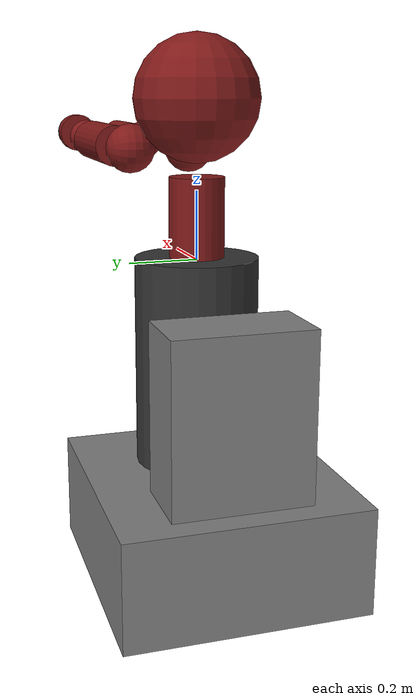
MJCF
<mujoco model="sawyer">
    <compiler angle="radian" meshdir="meshes/" />
    <size njmax="500" nconmax="100" />
    <worldbody>
        <body name="base" pos="0 0 0">
            <inertial pos="0 0 0" mass="0" diaginertia="0 0 0" />
            <body name="controller_box" pos="0 0 0">
                <inertial pos="-0.325 0 -0.38" mass="46.64" diaginertia="1.71363 1.27988 0.809981" />
                <geom size="0.11 0.2 0.265" pos="-0.325 0 -0.38" type="box" />
            </body>
            <body name="pedestal_feet" pos="0 0 0">
                <inertial pos="-0.1225 0 -0.758" mass="167.09" diaginertia="8.16095 9.59375 15.0785" />
                <geom size="0.385 0.35 0.155" pos="-0.1225 0 -0.758" type="box" />
            </body>
            <body name="torso" pos="0 0 0">
                <inertial pos="0 0 0" mass="0.0001" diaginertia="1e-08 1e-08 1e-08" />
            </body>
            <body name="pedestal" pos="0 0 0">
                <inertial pos="0 0 0" quat="0.659267 -0.259505 -0.260945 0.655692" mass="60.864" diaginertia="6.0869 5.81635 4.20915" />
                <geom size="0.18 0.31" pos="0 0 -0.3" type="cylinder" rgba="0.2 0.2 0.2 1" />
            </body>
            <body name="right_arm_base_link" pos="0 0 0">
                <inertial pos="-0.0006241 -2.8025e-05 0.065404" quat="-0.209285 0.674441 0.227335 0.670558" mass="2.0687" diaginertia="0.00740351 0.00681776 0.00672942" />
                <geom size="0.08 0.12" pos="0 0 0.12" type="cylinder" rgba="0.5 0.1 0.1 1" />
                <body name="right_l0" pos="0 0 0.08">
                    <inertial pos="0.024366 0.010969 0.14363" quat="0.894823 0.00899958 -0.170275 0.412573" mass="5.3213" diaginertia="0.0651588 0.0510944 0.0186218" />
                    <joint name="right_j0" pos="0 0 0" axis="0 0 1" limited="true" range="-3.0503 3.0503" />
                    <geom size="0.07" pos="0.081 0 0.237" rgba="0.5 0.1 0.1 1" />
                    <body name="head" pos="0 0 0.2965">
                        <inertial pos="0.0053207 -2.6549e-05 0.1021" quat="0.999993 7.08405e-05 -0.00359857 -0.000626247" mass="1.5795" diaginertia="0.0118334 0.00827089 0.00496574" />
                        <joint name="head_pan" pos="0 0 0" axis="0 0 1" limited="true" range="-5.1477 0.9559" />
                        <geom size="0.18" pos="0 0 0.08" rgba="0.5 0.1 0.1 1" />
                        <body name="screen" pos="0.03 0 0.105" quat="0.5 0.5 0.5 0.5">
                            <inertial pos="0 0 0" mass="0.0001" diaginertia="1e-08 1e-08 1e-08" />
                            <geom size="0.001" rgba="0.2 0.2 0.2 1" />
                        </body>
                        <body name="head_camera" pos="0.0228027 0 0.216572" quat="0.342813 -0.618449 0.618449 -0.342813">
                            <inertial pos="0.0228027 0 0.216572" quat="0.342813 -0.618449 0.618449 -0.342813" mass="0" diaginertia="0 0 0" />
                        </body>
                    </body>
                    <body name="right_torso_itb" pos="-0.055 0 0.22" quat="0.707107 0 -0.707107 0">
                        <inertial pos="0 0 0" mass="0.0001" diaginertia="1e-08 1e-08 1e-08" />
                    </body>
                    <body name="right_l1" pos="0.081 0.05 0.237" quat="0.5 -0.5 0.5 0.5">
                        <inertial pos="-0.0030849 -0.026811 0.092521" quat="0.424888 0.891987 0.132364 -0.0794296" mass="4.505" diaginertia="0.0224339 0.0221624 0.0097097" />
                        <joint name="right_j1" pos="0 0 0" axis="0 0 1" limited="true" range="-3.8183 2.2824" />
                        <geom size="0.07" pos="0 0 0.1225" rgba="0.5 0.1 0.1 1" />
                        <body name="right_l2" pos="0 -0.14 0.1425" quat="0.707107 0.707107 0 0">
                            <inertial pos="-0.00016232 -0.015346 0.13445" quat="0.707249 -0.0541564 0.0533441 0.702866" mass="1.7251" diaginertia="0.0255023 0.025176 0.00285946" />
                            <joint name="right_j2" pos="0 0 0" axis="0 0 1" limited="true" range="-3.0514 3.0514" />
                            <geom size="0.06 0.175" pos="0 0 0.14" type="cylinder" rgba="0.5 0.1 0.1 1" />
                            <body name="right_l3" pos="0 -0.042 0.26" quat="0.707107 -0.707107 0 0">
                                <inertial pos="-0.0046678 -0.028394 -0.083127" quat="0.894367 0.380888 -0.106513 0.209016" mass="2.4743" diaginertia="0.0100572 0.00959393 0.00350313" />
                                <joint name="right_j3" pos="0 0 0" axis="0 0 1" limited="true" range="-3.0514 3.0514" />
                                <geom size="0.06" pos="0 -0.01 -0.12" rgba="0.5 0.1 0.1 1" />
                                <body name="right_l4" pos="0 -0.125 -0.1265" quat="0.707107 0.707107 0 0">
                                    <inertial pos="-0.0027794 0.0076558 0.13273" quat="0.801274 0.0333339 -0.0340185 0.596399" mass="1.0433" diaginertia="0.013057 0.0129029 0.00113257" />
                                    <joint name="right_j4" pos="0 0 0" axis="0 0 1" limited="true" range="-2.9842 2.9842" />
                                    <geom size="0.045 0.18" pos="0 0 0.14" type="cylinder" rgba="0.5 0.1 0.1 1" />
                                    <body name="right_arm_itb" pos="-0.055 0 0.075" quat="0.707107 0 -0.707107 0">
                                        <inertial pos="0 0 0" mass="0.0001" diaginertia="1e-08 1e-08 1e-08" />
                                    </body>
                                    <body name="right_l5" pos="0 0.031 0.275" quat="0.707107 -0.707107 0 0">
                                        <inertial pos="0.0062067 -0.024291 0.075564" quat="0.405457 0.912624 0.0521713 0.000995062" mass="1.5343" diaginertia="0.00461663 0.0041769 0.00178717" />
                                        <joint name="right_j5" pos="0 0 0" axis="0 0 1" limited="true" range="-2.9842 2.9842" />
                                        <geom size="0.06" pos="0.01 0 0.09" rgba="0.5 0.1 0.1 1" />
                                        <body name="right_hand_camera" pos="0.039552 -0.033 0.0695" quat="0.707107 0 0.707107 0">
                                            <inertial pos="0.039552 -0.033 0.0695" quat="0.707107 0 0.707107 0" mass="0" diaginertia="0 0 0" />
                                        </body>
                                        <body name="right_wrist" pos="0 0 0.10541" quat="0.707107 0.707107 0 0">
                                            <inertial pos="0 0 0.10541" quat="0.707107 0.707107 0 0" mass="0" diaginertia="0 0 0" />
                                        </body>
                                        <body name="right_l6" pos="0 -0.11 0.1053" quat="0.0616248 0.06163 -0.704416 0.704416">
                                            <inertial pos="-8.0726e-06 0.0085838 -0.0049566" quat="0.479044 0.515636 -0.513069 0.491322" mass="0.3292" diaginertia="0.000360258 0.000311068 0.000214974" />
                                            <joint name="right_j6" pos="0 0 0" axis="0 0 1" limited="true" range="-4.7104 4.7104" />
                                            <geom size="0.065 0.025" pos="0 0 -0.005" type="cylinder" rgba="0.5 0.1 0.1 1" />
                                            <body name="right_hand" pos="0 0 0.0245" quat="0.707107 0 0 0.707107">
                                                <inertial pos="1e-08 1e-08 1e-08" quat="0.820473 0.339851 -0.17592 0.424708" mass="1e-08" diaginertia="1e-08 1e-08 1e-08" />
                                                <geom size="0.06 0.02" pos="0 0 0.02" type="cylinder" />
                                            </body>
                                        </body>
                                    </body>
                                </body>
                            </body>
                        </body>
                    </body>
                </body>
            </body>
        </body>
    </worldbody>
</mujoco>
